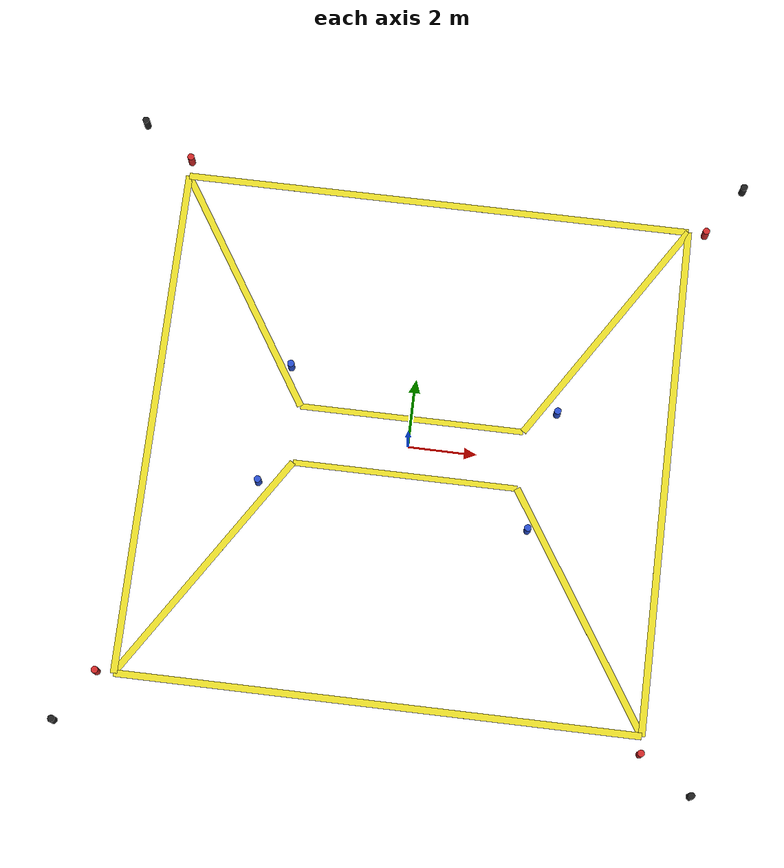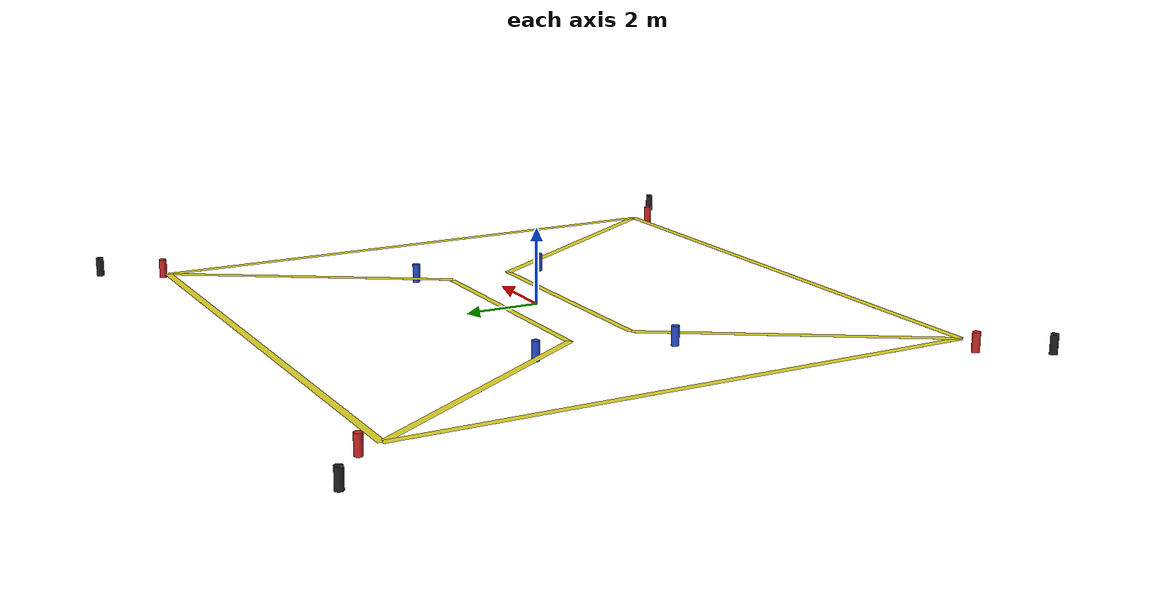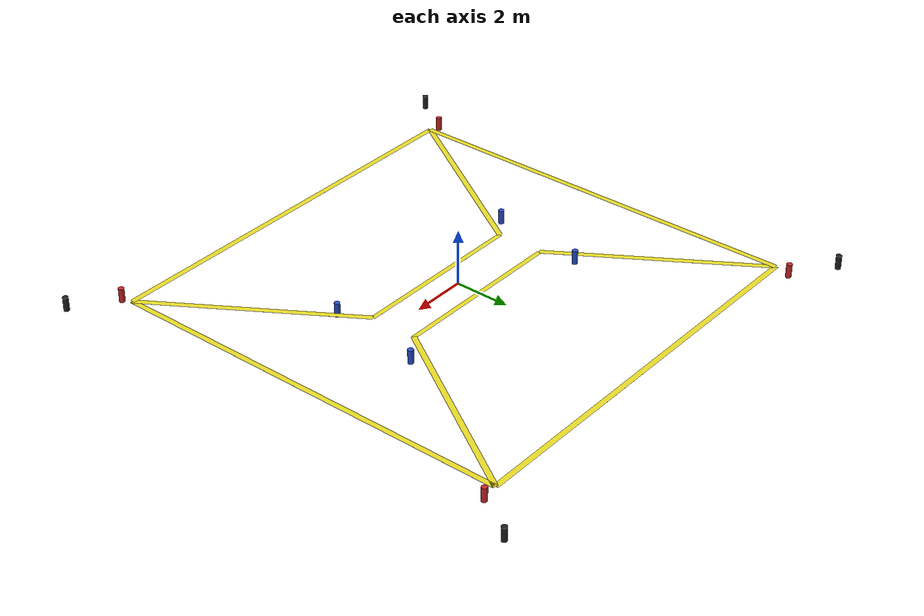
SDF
<sdf version="1.6">
 <world name="default">
  <light name="sun" type="directional">
   <pose>0 0 10 0 -0 0</pose>
   <diffuse>0.8 0.8 0.8 1</diffuse>
   <specular>0.2 0.2 0.2 1</specular>
   <attenuation>
    <range>1000</range>
    <constant>0.9</constant>
    <linear>0.01</linear>
    <quadratic>0.001</quadratic>
   </attenuation>
   <direction>-0.5 0.1 -0.9</direction>
  </light>
  <model name="yellow line_1">
   <static>1</static>
   <link name="link_ground1">
    <collision name="collision">
     <geometry><plane><normal>0 0 1</normal><size>0.1 6.5</size></plane></geometry>
     <surface><friction><ode><mu>100</mu><mu2>50</mu2></ode></friction></surface>
    </collision>
    <visual name="visual_ground_line_1">
     <cast_shadows>0</cast_shadows>
     <geometry><plane><normal>0 0 1</normal><size>0.17 6.53</size></plane></geometry>
     <material>
      <script><uri>file://media/materials/scripts/gazebo.material</uri><name>Gazebo/Yellow</name></script>
     </material>
    </visual>
   </link>
   <pose>0 0.850 0 0 0 1.57068</pose>
  </model>
  <model name="yellow line_2">
   <static>1</static>
   <link name="link_ground2">
    <collision name="collision">
     <geometry><plane><normal>0 0 1</normal><size>0.1 6.5</size></plane></geometry>
     <surface><friction><ode><mu>100</mu><mu2>50</mu2></ode></friction></surface>
    </collision>
    <visual name="visual_ground_line_2">
     <cast_shadows>0</cast_shadows>
     <geometry><plane><normal>0 0 1</normal><size>0.17 6.53</size></plane></geometry>
     <material>
      <script><uri>file://media/materials/scripts/gazebo.material</uri><name>Gazebo/Yellow</name></script>
     </material>
    </visual>
   </link>
   <pose>0 -0.850 0 0 0 1.57068</pose>
  </model>
  <model name="yellow line_l">
   <static>1</static>
   <link name="link_ground_l">
    <collision name="collision">
     <geometry><plane><normal>0 0 1</normal><size>0.1 6.5</size></plane></geometry>
     <surface><friction><ode><mu>100</mu><mu2>50</mu2></ode></friction></surface>
    </collision>
    <visual name="visual_ground_line_l">
     <cast_shadows>0</cast_shadows>
     <geometry><plane><normal>0 0 1</normal><size>0.2 15</size></plane></geometry>
     <material>
      <script><uri>file://media/materials/scripts/gazebo.material</uri><name>Gazebo/Yellow</name></script>
     </material>
    </visual>
   </link>
   <pose>0 7.50 0 0 0 1.57068</pose>
  </model>
  <model name="yellow line_r">
   <static>1</static>
   <link name="link_ground_r">
    <collision name="collision">
     <geometry><plane><normal>0 0 1</normal><size>0.1 6.5</size></plane></geometry>
     <surface><friction><ode><mu>100</mu><mu2>50</mu2></ode></friction></surface>
    </collision>
    <visual name="visual_ground_line_r">
     <cast_shadows>0</cast_shadows>
     <geometry><plane><normal>0 0 1</normal><size>0.2 15</size></plane></geometry>
     <material>
      <script><uri>file://media/materials/scripts/gazebo.material</uri><name>Gazebo/Yellow</name></script>
     </material>
    </visual>
   </link>
   <pose>0 -7.50 0 0 0 1.57068</pose>
  </model>
  <model name="yellow line_f">
   <static>1</static>
   <link name="link_ground_f">
    <collision name="collision">
     <geometry><plane><normal>0 0 1</normal><size>0.1 6.5</size></plane></geometry>
     <surface><friction><ode><mu>100</mu><mu2>50</mu2></ode></friction></surface>
    </collision>
    <visual name="visual_ground_line_f">
     <cast_shadows>0</cast_shadows>
     <geometry><plane><normal>0 0 1</normal><size>0.2 15</size></plane></geometry>
     <material>
      <script><uri>file://media/materials/scripts/gazebo.material</uri><name>Gazebo/Yellow</name></script>
     </material>
    </visual>
   </link>
   <pose>7.50 0 0 0 0 0</pose>
  </model>
  <model name="yellow line_b">
   <static>1</static>
   <link name="link_ground_b">
    <collision name="collision">
     <geometry><plane><normal>0 0 1</normal><size>0.1 6.5</size></plane></geometry>
     <surface><friction><ode><mu>100</mu><mu2>50</mu2></ode></friction></surface>
    </collision>
    <visual name="visual_ground_line_b">
     <cast_shadows>0</cast_shadows>
     <geometry><plane><normal>0 0 1</normal><size>0.2 15</size></plane></geometry>
     <material>
      <script><uri>file://media/materials/scripts/gazebo.material</uri><name>Gazebo/Yellow</name></script>
     </material>
    </visual>
   </link>
   <pose>-7.50 0 0 0 0 0</pose>
  </model>
  <model name="yellow line_lf">
   <static>1</static>
   <link name="link_ground_lf">
    <collision name="collision">
     <geometry><plane><normal>0 0 1</normal><size>0.1 6.5</size></plane></geometry>
     <surface><friction><ode><mu>100</mu><mu2>50</mu2></ode></friction></surface>
    </collision>
    <visual name="visual_ground_line_lf">
     <cast_shadows>0</cast_shadows>
     <geometry><plane><normal>0 0 1</normal><size>0.2 7.88402</size></plane></geometry>
     <material>
      <script><uri>file://media/materials/scripts/gazebo.material</uri><name>Gazebo/Yellow</name></script>
     </material>
    </visual>
   </link>
   <pose>5.3825 4.175 0 0 0 -0.567028</pose>
  </model>
  <model name="yellow line_rf">
   <static>1</static>
   <link name="link_ground_rf">
    <collision name="collision">
     <geometry><plane><normal>0 0 1</normal><size>0.1 6.5</size></plane></geometry>
     <surface><friction><ode><mu>100</mu><mu2>50</mu2></ode></friction></surface>
    </collision>
    <visual name="visual_ground_line_rf">
     <cast_shadows>0</cast_shadows>
     <geometry><plane><normal>0 0 1</normal><size>0.2 7.88402</size></plane></geometry>
     <material>
      <script><uri>file://media/materials/scripts/gazebo.material</uri><name>Gazebo/Yellow</name></script>
     </material>
    </visual>
   </link>
   <pose>5.3825 -4.175 0 0 0 0.567028</pose>
  </model>
  <model name="yellow line_lb">
   <static>1</static>
   <link name="link_ground_lb">
    <collision name="collision">
     <geometry><plane><normal>0 0 1</normal><size>0.1 6.5</size></plane></geometry>
     <surface><friction><ode><mu>100</mu><mu2>50</mu2></ode></friction></surface>
    </collision>
    <visual name="visual_ground_line_lb">
     <cast_shadows>0</cast_shadows>
     <geometry><plane><normal>0 0 1</normal><size>0.2 7.88402</size></plane></geometry>
     <material>
      <script><uri>file://media/materials/scripts/gazebo.material</uri><name>Gazebo/Yellow</name></script>
     </material>
    </visual>
   </link>
   <pose>-5.3825 4.175 0 0 0 0.567028</pose>
  </model>
  <model name="yellow line_rb">
   <static>1</static>
   <link name="link_ground_rb">
    <collision name="collision">
     <geometry><plane><normal>0 0 1</normal><size>0.1 6.5</size></plane></geometry>
     <surface><friction><ode><mu>100</mu><mu2>50</mu2></ode></friction></surface>
    </collision>
    <visual name="visual_ground_line_rb">
     <cast_shadows>0</cast_shadows>
     <geometry><plane><normal>0 0 1</normal><size>0.2 7.88402</size></plane></geometry>
     <material>
      <script><uri>file://media/materials/scripts/gazebo.material</uri><name>Gazebo/Yellow</name></script>
     </material>
    </visual>
   </link>
   <pose>-5.3825 -4.175 0 0 0 -0.567028</pose>
  </model>
  <model name="ground_plane">
   <static>1</static>
   <link name="link">
    <collision name="collision">
     <geometry><plane><normal>0 0 1</normal><size>100 100</size></plane></geometry>
     <surface>
      <contact><collide_bitmask>65535</collide_bitmask></contact>
      <friction><ode><mu>100</mu><mu2>50</mu2></ode></friction>
     </surface>
    </collision>
    <visual name="visual">
     <cast_shadows>0</cast_shadows>
     <geometry><plane><normal>0 0 1</normal><size>100 100</size></plane></geometry>
     <material>
      <script><uri>file://media/materials/scripts/gazebo.material</uri><name>Gazebo/Grey</name></script>
     </material>
    </visual>
   </link>
  </model>
  <model name="benchmark_lf_far">
   <pose>8.0 7.5 0.05 0 -0 0</pose>
   <link name="link">
    <inertial>
     <mass>1</mass>
     <inertia><ixx>0.145833</ixx><ixy>0</ixy><ixz>0</ixz><iyy>0.145833</iyy><iyz>0</iyz><izz>0.125</izz></inertia>
    </inertial>
    <collision name="collision">
     <geometry><cylinder><radius>0.1</radius><length>0.5</length></cylinder></geometry>
    </collision>
    <visual name="visual">
     <geometry><cylinder><radius>0.1</radius><length>0.5</length></cylinder></geometry>
     <material>
      <script><name>Gazebo/Red</name><uri>file://media/materials/scripts/gazebo.material</uri></script>
     </material>
    </visual>
   </link>
  </model>
  <model name="benchmark_rf_far">
   <pose>7.5 -8.0 0.05 0 -0 0</pose>
   <link name="link">
    <inertial>
     <mass>1</mass>
     <inertia><ixx>0.145833</ixx><ixy>0</ixy><ixz>0</ixz><iyy>0.145833</iyy><iyz>0</iyz><izz>0.125</izz></inertia>
    </inertial>
    <collision name="collision">
     <geometry><cylinder><radius>0.1</radius><length>0.5</length></cylinder></geometry>
    </collision>
    <visual name="visual">
     <geometry><cylinder><radius>0.1</radius><length>0.5</length></cylinder></geometry>
     <material>
      <script><name>Gazebo/Red</name><uri>file://media/materials/scripts/gazebo.material</uri></script>
     </material>
    </visual>
   </link>
  </model>
  <model name="benchmark_lb_far">
   <pose>-7.5 8.0 0.05 0 -0 0</pose>
   <link name="link">
    <inertial>
     <mass>1</mass>
     <inertia><ixx>0.145833</ixx><ixy>0</ixy><ixz>0</ixz><iyy>0.145833</iyy><iyz>0</iyz><izz>0.125</izz></inertia>
    </inertial>
    <collision name="collision">
     <geometry><cylinder><radius>0.1</radius><length>0.5</length></cylinder></geometry>
    </collision>
    <visual name="visual">
     <geometry><cylinder><radius>0.1</radius><length>0.5</length></cylinder></geometry>
     <material>
      <script><name>Gazebo/Red</name><uri>file://media/materials/scripts/gazebo.material</uri></script>
     </material>
    </visual>
   </link>
  </model>
  <model name="benchmark_rb_far">
   <pose>-8.0 -7.5 0.05 0 -0 0</pose>
   <link name="link">
    <inertial>
     <mass>1</mass>
     <inertia><ixx>0.145833</ixx><ixy>0</ixy><ixz>0</ixz><iyy>0.145833</iyy><iyz>0</iyz><izz>0.125</izz></inertia>
    </inertial>
    <collision name="collision">
     <geometry><cylinder><radius>0.1</radius><length>0.5</length></cylinder></geometry>
    </collision>
    <visual name="visual">
     <geometry><cylinder><radius>0.1</radius><length>0.5</length></cylinder></geometry>
     <material>
      <script><name>Gazebo/Red</name><uri>file://media/materials/scripts/gazebo.material</uri></script>
     </material>
    </visual>
   </link>
  </model>
  <model name="benchmark_lf_near">
   <pose>4.1885 1.515 0.05 0 -0 0</pose>
   <link name="link">
    <inertial>
     <mass>1</mass>
     <inertia><ixx>0.145833</ixx><ixy>0</ixy><ixz>0</ixz><iyy>0.145833</iyy><iyz>0</iyz><izz>0.125</izz></inertia>
    </inertial>
    <collision name="collision">
     <geometry><cylinder><radius>0.1</radius><length>0.5</length></cylinder></geometry>
    </collision>
    <visual name="visual">
     <geometry><cylinder><radius>0.1</radius><length>0.5</length></cylinder></geometry>
     <material>
      <script><name>Gazebo/Blue</name><uri>file://media/materials/scripts/gazebo.material</uri></script>
     </material>
    </visual>
   </link>
  </model>
  <model name="benchmark_rf_near">
   <pose>3.6885 -2.015 0.05 0 -0 0</pose>
   <link name="link">
    <inertial>
     <mass>1</mass>
     <inertia><ixx>0.145833</ixx><ixy>0</ixy><ixz>0</ixz><iyy>0.145833</iyy><iyz>0</iyz><izz>0.125</izz></inertia>
    </inertial>
    <collision name="collision">
     <geometry><cylinder><radius>0.1</radius><length>0.5</length></cylinder></geometry>
    </collision>
    <visual name="visual">
     <geometry><cylinder><radius>0.1</radius><length>0.5</length></cylinder></geometry>
     <material>
      <script><name>Gazebo/Blue</name><uri>file://media/materials/scripts/gazebo.material</uri></script>
     </material>
    </visual>
   </link>
  </model>
  <model name="benchmark_lb_near">
   <pose>-3.6885 2.015 0.05 0 -0 0</pose>
   <link name="link">
    <inertial>
     <mass>1</mass>
     <inertia><ixx>0.145833</ixx><ixy>0</ixy><ixz>0</ixz><iyy>0.145833</iyy><iyz>0</iyz><izz>0.125</izz></inertia>
    </inertial>
    <collision name="collision">
     <geometry><cylinder><radius>0.1</radius><length>0.5</length></cylinder></geometry>
    </collision>
    <visual name="visual">
     <geometry><cylinder><radius>0.1</radius><length>0.5</length></cylinder></geometry>
     <material>
      <script><name>Gazebo/Blue</name><uri>file://media/materials/scripts/gazebo.material</uri></script>
     </material>
    </visual>
   </link>
  </model>
  <model name="benchmark_rb_near">
   <pose>-4.1885 -1.515 0.05 0 -0 0</pose>
   <link name="link">
    <inertial>
     <mass>1</mass>
     <inertia><ixx>0.145833</ixx><ixy>0</ixy><ixz>0</ixz><iyy>0.145833</iyy><iyz>0</iyz><izz>0.125</izz></inertia>
    </inertial>
    <collision name="collision">
     <geometry><cylinder><radius>0.1</radius><length>0.5</length></cylinder></geometry>
    </collision>
    <visual name="visual">
     <geometry><cylinder><radius>0.1</radius><length>0.5</length></cylinder></geometry>
     <material>
      <script><name>Gazebo/Blue</name><uri>file://media/materials/scripts/gazebo.material</uri></script>
     </material>
    </visual>
   </link>
  </model>
  <model name="benchmark_lf_limit">
   <pose>9 9 0.05 0 -0 0</pose>
   <link name="link">
    <inertial>
     <mass>1</mass>
     <inertia><ixx>0.145833</ixx><ixy>0</ixy><ixz>0</ixz><iyy>0.145833</iyy><iyz>0</iyz><izz>0.125</izz></inertia>
    </inertial>
    <collision name="collision">
     <geometry><cylinder><radius>0.1</radius><length>0.5</length></cylinder></geometry>
    </collision>
    <visual name="visual">
     <geometry><cylinder><radius>0.1</radius><length>0.5</length></cylinder></geometry>
     <material>
      <script><name>Gazebo/Black</name><uri>file://media/materials/scripts/gazebo.material</uri></script>
     </material>
    </visual>
   </link>
  </model>
  <model name="benchmark_rf_limit">
   <pose>9 -9 0.05 0 -0 0</pose>
   <link name="link">
    <inertial>
     <mass>1</mass>
     <inertia><ixx>0.145833</ixx><ixy>0</ixy><ixz>0</ixz><iyy>0.145833</iyy><iyz>0</iyz><izz>0.125</izz></inertia>
    </inertial>
    <collision name="collision">
     <geometry><cylinder><radius>0.1</radius><length>0.5</length></cylinder></geometry>
    </collision>
    <visual name="visual">
     <geometry><cylinder><radius>0.1</radius><length>0.5</length></cylinder></geometry>
     <material>
      <script><name>Gazebo/Black</name><uri>file://media/materials/scripts/gazebo.material</uri></script>
     </material>
    </visual>
   </link>
  </model>
  <model name="benchmark_lb_limit">
   <pose>-9 9 0.05 0 -0 0</pose>
   <link name="link">
    <inertial>
     <mass>1</mass>
     <inertia><ixx>0.145833</ixx><ixy>0</ixy><ixz>0</ixz><iyy>0.145833</iyy><iyz>0</iyz><izz>0.125</izz></inertia>
    </inertial>
    <collision name="collision">
     <geometry><cylinder><radius>0.1</radius><length>0.5</length></cylinder></geometry>
    </collision>
    <visual name="visual">
     <geometry><cylinder><radius>0.1</radius><length>0.5</length></cylinder></geometry>
     <material>
      <script><name>Gazebo/Black</name><uri>file://media/materials/scripts/gazebo.material</uri></script>
     </material>
    </visual>
   </link>
  </model>
  <model name="benchmark_rb_lomit">
   <pose>-9 -9 0.05 0 -0 0</pose>
   <link name="link">
    <inertial>
     <mass>1</mass>
     <inertia><ixx>0.145833</ixx><ixy>0</ixy><ixz>0</ixz><iyy>0.145833</iyy><iyz>0</iyz><izz>0.125</izz></inertia>
    </inertial>
    <collision name="collision">
     <geometry><cylinder><radius>0.1</radius><length>0.5</length></cylinder></geometry>
    </collision>
    <visual name="visual">
     <geometry><cylinder><radius>0.1</radius><length>0.5</length></cylinder></geometry>
     <material>
      <script><name>Gazebo/Black</name><uri>file://media/materials/scripts/gazebo.material</uri></script>
     </material>
    </visual>
   </link>
  </model>
  <gravity>0 0 -9.8</gravity>
  <magnetic_field>6e-06 2.3e-05 -4.2e-05</magnetic_field>
  <atmosphere type="adiabatic"/>
  <physics name="default_physics" default="0" type="ode">
   <max_step_size>0.001</max_step_size>
   <real_time_factor>1</real_time_factor>
   <real_time_update_rate>1000</real_time_update_rate>
  </physics>
  <scene><ambient>0.4 0.4 0.4 1</ambient><background>0.7 0.7 0.7 1</background><shadows>1</shadows></scene>
  <audio><device>default</device></audio>
  <spherical_coordinates>
   <surface_model>EARTH_WGS84</surface_model>
   <latitude_deg>0</latitude_deg>
   <longitude_deg>0</longitude_deg>
   <elevation>0</elevation>
   <heading_deg>0</heading_deg>
  </spherical_coordinates>
 </world>
</sdf>
